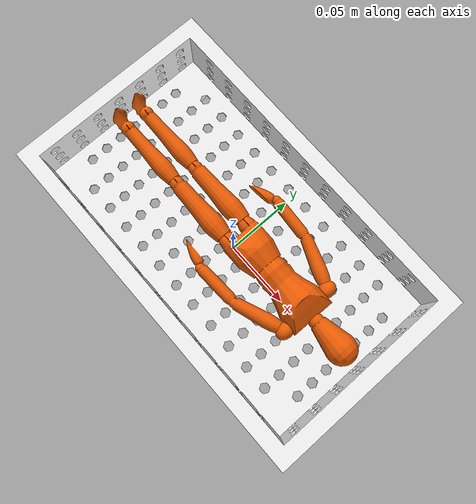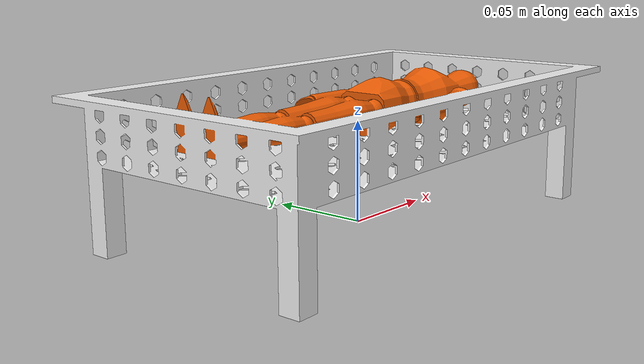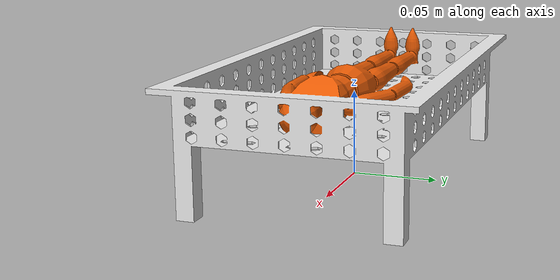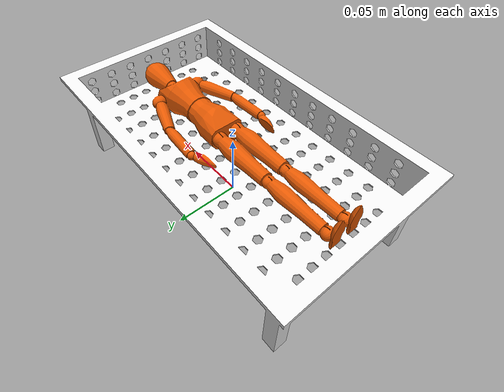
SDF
<?xml version="1.0" ?>
<sdf version="1.6">
  <model name="box_dae">
    <static>false</static>

    <link name="link">
      <inertial>
        <!-- 무게중심: 바닥중심 원점에서 높이의 절반 -->
        <pose>0 0 0.0371 0 0 0</pose>
        <mass>0.3</mass>
        <!-- 균일 직육면체 0.238 x 0.138 x 0.0743, m=0.3 -->
        <inertia>
          <ixx>0.000614</ixx><ixy>0</ixy><ixz>0</ixz>
          <iyy>0.001554</iyy><iyz>0</iyz>
          <izz>0.001892</izz>
        </inertia>
      </inertial>

      <collision name="collision">
        <pose>0 0 0.0371 0 0 0</pose>
        <geometry>
          <box><size>0.238 0.138 0.0743</size></box>
        </geometry>
        <!-- 집게가 옆면을 눌러서 마찰로 버티는 구조라 mu 가 파지력을 좌우한다.
             구 box.dae 모델에서 검증된 값(1.5)을 그대로 쓴다. -->
        <surface>
          <friction><ode><mu>1.5</mu><mu2>1.5</mu2></ode></friction>
        </surface>
      </collision>

      <visual name="visual">
        <pose>-0.110 -0.060 0 0 0 0</pose>
        <geometry>
          <mesh>
            <uri>model://box/meshes/basket.dae</uri>
            <scale>0.001 0.001 0.001</scale>
          </mesh>
        </geometry>
      </visual>
    </link>
  </model>
</sdf>
